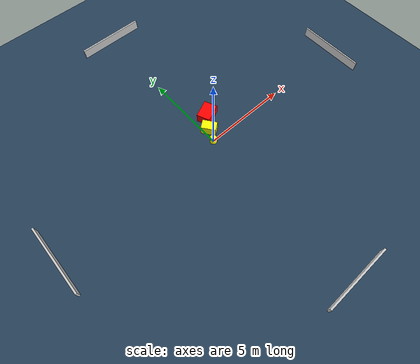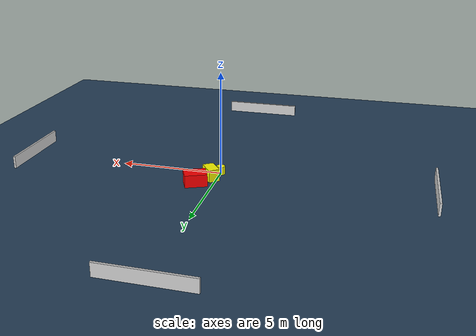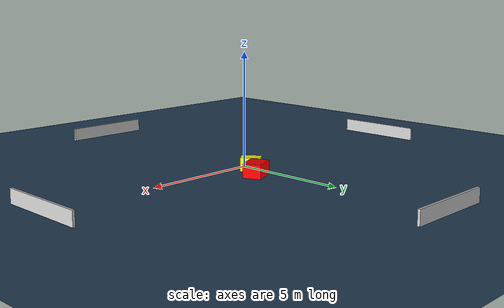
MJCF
<?xml version="1.0" ?>
<mujoco model="generated_environment">
  <option timestep="0.01" integrator="RK4" cone="elliptic"/>
  <default>
    <geom density="1"/>
  </default>
  <asset>
    <texture builtin="gradient" height="3072" name="skybox" rgb1="0.3 0.5 0.7" rgb2="0 0 0" type="skybox" width="512"/>
    <texture builtin="checker" height="300" name="groundplane" rgb1="0.2 0.3 0.4" rgb2="0.1 0.2 0.3" type="2d" width="300"/>
    <material name="groundplane" reflectance="0.2" texrepeat="5 5" texture="groundplane"/>
  </asset>
  <worldbody>
    <light dir="0 0 -1" directional="true" pos="0 0 1.5"/>
    <geom condim="3" friction="0.5 0.005 0.001" material="groundplane" name="floor" pos="0 0 0" size="0 0 0.05" type="plane"/>
    <body name="walls">
      <geom name="wall_1" condim="4" pos="-10.0 0.0 0.3" rgba="0.800000011920929 0.800000011920929 0.800000011920929 1.0" size="0.05 2.0 0.3" type="box"/>
      <geom name="wall_2" condim="4" pos="10.0 0.0 0.3" rgba="0.800000011920929 0.800000011920929 0.800000011920929 1.0" size="0.05 2.0 0.3" type="box"/>
      <geom name="wall_3" condim="4" pos="0.0 -10.0 0.3" rgba="0.800000011920929 0.800000011920929 0.800000011920929 1.0" size="2.0 0.05 0.3" type="box"/>
      <geom name="wall_4" condim="4" pos="0.0 10.0 0.3" rgba="0.800000011920929 0.800000011920929 0.800000011920929 1.0" size="2.0 0.05 0.3" type="box"/>
    </body>
    <body name="robot">
      <joint name="joint_x" type="slide" pos="0 0 0" axis="1 0 0"/>
      <joint name="joint_y" type="slide" pos="0 0 0" axis="0 1 0"/>
      <geom name="robot" type="cylinder" pos="0.0 0.0 0.2" size="0.2 0.2 0.0" mass="5.0" friction="1.0 0.005 0.0001" condim="4" rgba="1.0 1.0 0.0 1.0"/>
    </body>
    <body name="obstacle_1_movable">
      <geom name="obstacle_1_movable" condim="4" pos="0.2966500506529528 0.6928646448527146 0.3" euler="0 0 126.95624276288214" friction="0.0 0.005 0.001" rgba="1.0 1.0 0.0 1.0" size="0.4296070062427636 0.2727058527241692 0.3" type="box" mass="0.1"/>
      <joint type="free"/>
    </body>
    <body name="obstacle_2_static">
      <geom name="obstacle_2_static" condim="4" pos="0.8422238147803962 1.4964360628638893 0.3" euler="0 0 113.9045008345486" friction="0.0 0.005 0.001" rgba="1.0 0.0 0.0 1.0" size="0.39418972112306955 0.5276349692638902 0.3" type="box"/>
    </body>
  </worldbody>
  <actuator>
    <motor name="actuator_x" joint="joint_x" gear="1" ctrlrange="-1 1"/>
    <motor name="actuator_y" joint="joint_y" gear="1" ctrlrange="-1 1"/>
  </actuator>
</mujoco>
